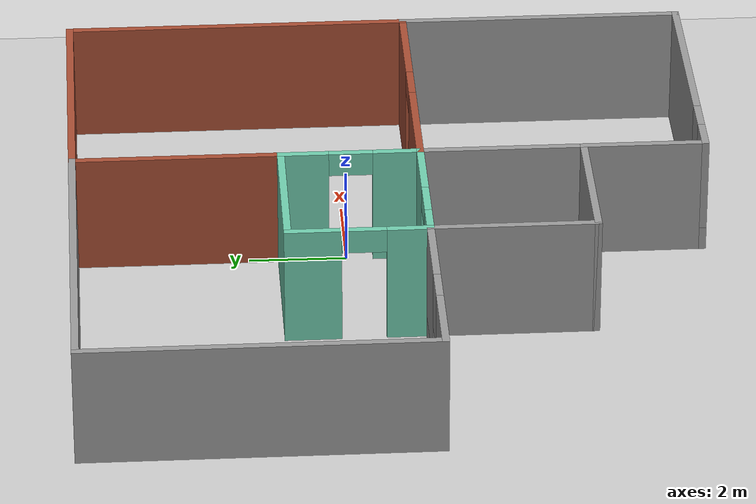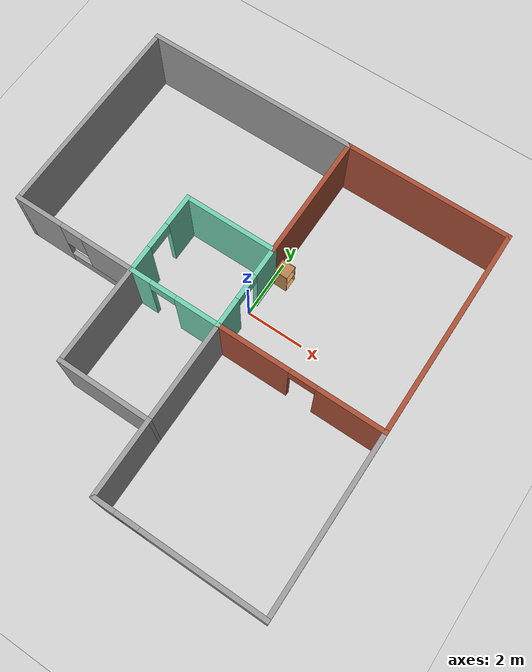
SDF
<sdf version="1.6">
 <world name="default">
  <plugin name="welcome" filename="libwelcome.so"/>
  <light name="sun" type="directional">
   <pose>0 0 10 0 -0 0</pose>
   <diffuse>0.8 0.8 0.8 1</diffuse>
   <specular>0.2 0.2 0.2 1</specular>
   <attenuation>
    <range>1000</range>
    <constant>0.9</constant>
    <linear>0.01</linear>
    <quadratic>0.001</quadratic>
   </attenuation>
   <direction>-0.5 0.1 -0.9</direction>
  </light>
  <model name="ground_plane">
   <static>1</static>
   <link name="link">
    <collision name="collision">
     <geometry><plane><normal>0 0 1</normal><size>100 100</size></plane></geometry>
     <surface><friction><ode><mu>100</mu><mu2>50</mu2></ode></friction></surface>
    </collision>
    <visual name="visual">
     <cast_shadows>0</cast_shadows>
     <geometry><plane><normal>0 0 1</normal><size>100 100</size></plane></geometry>
     <material>
      <script><uri>file://media/materials/scripts/gazebo.material</uri><name>Gazebo/Grey</name></script>
     </material>
    </visual>
   </link>
  </model>
  <gravity>0 0 -9.8</gravity>
  <magnetic_field>6e-06 2.3e-05 -4.2e-05</magnetic_field>
  <atmosphere type="adiabatic"/>
  <physics name="default_physics" default="0" type="ode">
   <max_step_size>0.001</max_step_size>
   <real_time_factor>1</real_time_factor>
   <real_time_update_rate>1000</real_time_update_rate>
  </physics>
  <scene><ambient>0.4 0.4 0.4 1</ambient><background>0.7 0.7 0.7 1</background><shadows>1</shadows></scene>
  <audio><device>default</device></audio>
  <spherical_coordinates>
   <surface_model>EARTH_WGS84</surface_model>
   <latitude_deg>0</latitude_deg>
   <longitude_deg>0</longitude_deg>
   <elevation>0</elevation>
   <heading_deg>0</heading_deg>
  </spherical_coordinates>
  <model name="model">
   <pose>-0.86393 -0.89424 0 0 -0 0</pose>
   <link name="Wall_10">
    <collision name="Wall_10_Collision">
     <geometry><box><size>5.75 0.15 2.5</size></box></geometry>
     <pose>0 0 1.25 0 -0 0</pose>
    </collision>
    <visual name="Wall_10_Visual">
     <pose>0 0 1.25 0 -0 0</pose>
     <geometry><box><size>5.75 0.15 2.5</size></box></geometry>
     <material>
      <script><uri>file://media/materials/scripts/gazebo.material</uri><name>Gazebo/Bricks</name></script>
      <ambient>1 1 1 1</ambient>
     </material>
     <meta><layer>0</layer></meta>
    </visual>
    <pose>3.67517 6.47508 0 0 -0 3.14159</pose>
   </link>
   <link name="Wall_11">
    <collision name="Wall_11_Collision">
     <geometry><box><size>4.4 0.15 2.5</size></box></geometry>
     <pose>0 0 1.25 0 -0 0</pose>
    </collision>
    <visual name="Wall_11_Visual">
     <pose>0 0 1.25 0 -0 0</pose>
     <geometry><box><size>4.4 0.15 2.5</size></box></geometry>
     <material>
      <script><uri>file://media/materials/scripts/gazebo.material</uri><name>Gazebo/Bricks</name></script>
      <ambient>1 1 1 1</ambient>
     </material>
     <meta><layer>0</layer></meta>
    </visual>
    <pose>0.875172 4.35008 0 0 -0 -1.5708</pose>
   </link>
   <link name="Wall_13">
    <collision name="Wall_13_Collision">
     <geometry><box><size>7.5 0.15 2.5</size></box></geometry>
     <pose>0 0 1.25 0 -0 0</pose>
    </collision>
    <visual name="Wall_13_Visual">
     <pose>0 0 1.25 0 -0 0</pose>
     <geometry><box><size>7.5 0.15 2.5</size></box></geometry>
     <material>
      <script><uri>file://media/materials/scripts/gazebo.material</uri><name>Gazebo/Grey</name></script>
      <ambient>1 1 1 1</ambient>
     </material>
     <meta><layer>0</layer></meta>
    </visual>
    <pose>-2.8 6.475 0 0 -0 -3.14157</pose>
   </link>
   <link name="Wall_14">
    <collision name="Wall_14_Collision">
     <geometry><box><size>7.25 0.15 2.5</size></box></geometry>
     <pose>0 0 1.25 0 -0 0</pose>
    </collision>
    <visual name="Wall_14_Visual">
     <pose>0 0 1.25 0 -0 0</pose>
     <geometry><box><size>7.25 0.15 2.5</size></box></geometry>
     <material>
      <script><uri>file://media/materials/scripts/gazebo.material</uri><name>Gazebo/Grey</name></script>
      <ambient>1 1 1 1</ambient>
     </material>
     <meta><layer>0</layer></meta>
    </visual>
    <pose>-6.47518 2.92492 0 0 -0 -1.5708</pose>
   </link>
   <link name="Wall_15">
    <pose>-4.35 -0.625001 0 0 -0 3.8e-05</pose>
    <visual name="Wall_15_Visual_0">
     <pose>-1.34375 0 1.25 0 -0 0</pose>
     <geometry><box><size>1.7125 0.15 2.5</size></box></geometry>
     <material>
      <script><uri>file://media/materials/scripts/gazebo.material</uri><name>Gazebo/Grey</name></script>
      <ambient>1 1 1 1</ambient>
     </material>
     <meta><layer>0</layer></meta>
    </visual>
    <collision name="Wall_15_Collision_0">
     <geometry><box><size>1.7125 0.15 2.5</size></box></geometry>
     <pose>-1.34375 0 1.25 0 -0 0</pose>
    </collision>
    <visual name="Wall_15_Visual_1">
     <pose>0.85625 0 0.25 0 -0 0</pose>
     <geometry><box><size>2.6875 0.15 0.5</size></box></geometry>
     <material>
      <script><uri>file://media/materials/scripts/gazebo.material</uri><name>Gazebo/Grey</name></script>
      <ambient>1 1 1 1</ambient>
     </material>
     <meta><layer>0</layer></meta>
    </visual>
    <collision name="Wall_15_Collision_1">
     <geometry><box><size>2.6875 0.15 0.5</size></box></geometry>
     <pose>0.85625 0 0.25 0 -0 0</pose>
    </collision>
    <visual name="Wall_15_Visual_2">
     <pose>1.25625 0 1.5 0 -0 0</pose>
     <geometry><box><size>1.8875 0.15 2</size></box></geometry>
     <material>
      <script><uri>file://media/materials/scripts/gazebo.material</uri><name>Gazebo/Grey</name></script>
      <ambient>1 1 1 1</ambient>
     </material>
     <meta><layer>0</layer></meta>
    </visual>
    <collision name="Wall_15_Collision_2">
     <geometry><box><size>1.8875 0.15 2</size></box></geometry>
     <pose>1.25625 0 1.5 0 -0 0</pose>
    </collision>
    <visual name="Wall_15_Visual_3">
     <pose>-0.0875 0 1.9 0 -0 0</pose>
     <geometry><box><size>0.8 0.15 1.2</size></box></geometry>
     <material>
      <script><uri>file://media/materials/scripts/gazebo.material</uri><name>Gazebo/Grey</name></script>
      <ambient>1 1 1 1</ambient>
     </material>
     <meta><layer>0</layer></meta>
    </visual>
    <collision name="Wall_15_Collision_3">
     <geometry><box><size>0.8 0.15 1.2</size></box></geometry>
     <pose>-0.0875 0 1.9 0 -0 0</pose>
    </collision>
   </link>
   <link name="Wall_16">
    <collision name="Wall_16_Collision">
     <geometry><box><size>3.5 0.15 2.5</size></box></geometry>
     <pose>0 0 1.25 0 -0 0</pose>
    </collision>
    <visual name="Wall_16_Visual">
     <pose>0 0 1.25 0 -0 0</pose>
     <geometry><box><size>3.5 0.15 2.5</size></box></geometry>
     <material>
      <script><uri>file://media/materials/scripts/gazebo.material</uri><name>Gazebo/Grey</name></script>
      <ambient>1 1 1 1</ambient>
     </material>
     <meta><layer>0</layer></meta>
    </visual>
    <pose>-2.225 -2.3 0 0 -0 -1.5709</pose>
   </link>
   <link name="Wall_17">
    <collision name="Wall_17_Collision">
     <geometry><box><size>3.25 0.15 2.5</size></box></geometry>
     <pose>0 0 1.25 0 -0 0</pose>
    </collision>
    <visual name="Wall_17_Visual">
     <pose>0 0 1.25 0 -0 0</pose>
     <geometry><box><size>3.25 0.15 2.5</size></box></geometry>
     <material>
      <script><uri>file://media/materials/scripts/gazebo.material</uri><name>Gazebo/Grey</name></script>
      <ambient>1 1 1 1</ambient>
     </material>
     <meta><layer>0</layer></meta>
    </visual>
    <pose>-0.675176 -3.97508 0 0 -0 0</pose>
   </link>
   <link name="Wall_18">
    <collision name="Wall_18_Collision">
     <geometry><box><size>3.5 0.15 2.5</size></box></geometry>
     <pose>0 0 1.25 0 -0 0</pose>
    </collision>
    <visual name="Wall_18_Visual">
     <pose>0 0 1.25 0 -0 0</pose>
     <geometry><box><size>3.5 0.15 2.5</size></box></geometry>
     <material>
      <script><uri>file://media/materials/scripts/gazebo.material</uri><name>Gazebo/Grey</name></script>
      <ambient>1 1 1 1</ambient>
     </material>
     <meta><layer>0</layer></meta>
    </visual>
    <pose>0.874998 -2.3 0 0 -0 1.57069</pose>
   </link>
   <link name="Wall_20">
    <collision name="Wall_20_Collision">
     <geometry><box><size>6 0.15 2.5</size></box></geometry>
     <pose>0 0 1.25 0 -0 0</pose>
    </collision>
    <visual name="Wall_20_Visual">
     <pose>0 0 1.25 0 -0 0</pose>
     <geometry><box><size>6 0.15 2.5</size></box></geometry>
     <material>
      <script><uri>file://media/materials/scripts/gazebo.material</uri><name>Gazebo/Grey</name></script>
      <ambient>1 1 1 1</ambient>
     </material>
     <meta><layer>0</layer></meta>
    </visual>
    <pose>6.475 -3.55 0 0 -0 -1.57086</pose>
   </link>
   <link name="Wall_21">
    <pose>3.67482 -6.47508 0 0 -0 3.14159</pose>
    <visual name="Wall_21_Visual_0">
     <pose>-0.799425 0 1.25 0 -0 0</pose>
     <geometry><box><size>4.15115 0.15 2.5</size></box></geometry>
     <material>
      <script><uri>file://media/materials/scripts/gazebo.material</uri><name>Gazebo/Grey</name></script>
      <ambient>1 1 1 1</ambient>
     </material>
     <meta><layer>0</layer></meta>
    </visual>
    <collision name="Wall_21_Collision_0">
     <geometry><box><size>4.15115 0.15 2.5</size></box></geometry>
     <pose>-0.799425 0 1.25 0 -0 0</pose>
    </collision>
    <visual name="Wall_21_Visual_1">
     <pose>2.07558 0 0.25 0 -0 0</pose>
     <geometry><box><size>1.59885 0.15 0.5</size></box></geometry>
     <material>
      <script><uri>file://media/materials/scripts/gazebo.material</uri><name>Gazebo/Grey</name></script>
      <ambient>1 1 1 1</ambient>
     </material>
     <meta><layer>0</layer></meta>
    </visual>
    <collision name="Wall_21_Collision_1">
     <geometry><box><size>1.59885 0.15 0.5</size></box></geometry>
     <pose>2.07558 0 0.25 0 -0 0</pose>
    </collision>
    <visual name="Wall_21_Visual_2">
     <pose>2.47558 0 1.5 0 -0 0</pose>
     <geometry><box><size>0.79885 0.15 2</size></box></geometry>
     <material>
      <script><uri>file://media/materials/scripts/gazebo.material</uri><name>Gazebo/Grey</name></script>
      <ambient>1 1 1 1</ambient>
     </material>
     <meta><layer>0</layer></meta>
    </visual>
    <collision name="Wall_21_Collision_2">
     <geometry><box><size>0.79885 0.15 2</size></box></geometry>
     <pose>2.47558 0 1.5 0 -0 0</pose>
    </collision>
    <visual name="Wall_21_Visual_3">
     <pose>1.67615 0 1.9 0 -0 0</pose>
     <geometry><box><size>0.8 0.15 1.2</size></box></geometry>
     <material>
      <script><uri>file://media/materials/scripts/gazebo.material</uri><name>Gazebo/Grey</name></script>
      <ambient>1 1 1 1</ambient>
     </material>
     <meta><layer>0</layer></meta>
    </visual>
    <collision name="Wall_21_Collision_3">
     <geometry><box><size>0.8 0.15 1.2</size></box></geometry>
     <pose>1.67615 0 1.9 0 -0 0</pose>
    </collision>
   </link>
   <link name="Wall_22">
    <collision name="Wall_22_Collision">
     <geometry><box><size>2.65 0.15 2.5</size></box></geometry>
     <pose>0 0 1.25 0 -0 0</pose>
    </collision>
    <visual name="Wall_22_Visual">
     <pose>0 0 1.25 0 -0 0</pose>
     <geometry><box><size>2.65 0.15 2.5</size></box></geometry>
     <material>
      <script><uri>file://media/materials/scripts/gazebo.material</uri><name>Gazebo/Grey</name></script>
      <ambient>1 1 1 1</ambient>
     </material>
     <meta><layer>0</layer></meta>
    </visual>
    <pose>0.874824 -5.22508 0 0 -0 1.5708</pose>
   </link>
   <link name="Wall_3">
    <collision name="Wall_3_Collision">
     <geometry><box><size>3.25 0.15 2.5</size></box></geometry>
     <pose>0 0 1.25 0 -0 0</pose>
    </collision>
    <visual name="Wall_3_Visual">
     <pose>0 0 1.25 0 -0 0</pose>
     <geometry><box><size>3.25 0.15 2.5</size></box></geometry>
     <material>
      <script><uri>file://media/materials/scripts/gazebo.material</uri><name>Gazebo/Grey</name></script>
      <ambient>0.435294 0.796078 0.67451 1</ambient>
     </material>
     <meta><layer>0</layer></meta>
    </visual>
    <pose>-0.674828 2.22508 0 0 -0 0</pose>
   </link>
   <link name="Wall_4">
    <pose>0.875172 0.80008 0 0 -0 -1.5708</pose>
    <visual name="Wall_4_Visual_0">
     <pose>-0.973468 0 1.25 0 -0 0</pose>
     <geometry><box><size>1.05306 0.15 2.5</size></box></geometry>
     <material>
      <script><uri>file://media/materials/scripts/gazebo.material</uri><name>Gazebo/Grey</name></script>
      <ambient>0.435294 0.796078 0.67451 1</ambient>
     </material>
     <meta><layer>0</layer></meta>
    </visual>
    <collision name="Wall_4_Collision_0">
     <geometry><box><size>1.05306 0.15 2.5</size></box></geometry>
     <pose>-0.973468 0 1.25 0 -0 0</pose>
    </collision>
    <visual name="Wall_4_Visual_1">
     <pose>0.976532 0 1.25 0 -0 0</pose>
     <geometry><box><size>1.04694 0.15 2.5</size></box></geometry>
     <material>
      <script><uri>file://media/materials/scripts/gazebo.material</uri><name>Gazebo/Grey</name></script>
      <ambient>0.435294 0.796078 0.67451 1</ambient>
     </material>
     <meta><layer>0</layer></meta>
    </visual>
    <collision name="Wall_4_Collision_1">
     <geometry><box><size>1.04694 0.15 2.5</size></box></geometry>
     <pose>0.976532 0 1.25 0 -0 0</pose>
    </collision>
    <visual name="Wall_4_Visual_2">
     <pose>0.003064 0 2.25 0 -0 0</pose>
     <geometry><box><size>0.9 0.15 0.5</size></box></geometry>
     <material>
      <script><uri>file://media/materials/scripts/gazebo.material</uri><name>Gazebo/Grey</name></script>
      <ambient>0.435294 0.796078 0.67451 1</ambient>
     </material>
     <meta><layer>0</layer></meta>
    </visual>
    <collision name="Wall_4_Collision_2">
     <geometry><box><size>0.9 0.15 0.5</size></box></geometry>
     <pose>0.003064 0 2.25 0 -0 0</pose>
    </collision>
   </link>
   <link name="Wall_5">
    <pose>-0.674828 -0.62492 0 0 -0 3.14159</pose>
    <visual name="Wall_5_Visual_0">
     <pose>-0.835737 0 1.25 0 -0 0</pose>
     <geometry><box><size>1.57853 0.15 2.5</size></box></geometry>
     <material>
      <script><uri>file://media/materials/scripts/gazebo.material</uri><name>Gazebo/Grey</name></script>
      <ambient>0.435294 0.796078 0.67451 1</ambient>
     </material>
     <meta><layer>0</layer></meta>
    </visual>
    <collision name="Wall_5_Collision_0">
     <geometry><box><size>1.57853 0.15 2.5</size></box></geometry>
     <pose>-0.835737 0 1.25 0 -0 0</pose>
    </collision>
    <visual name="Wall_5_Visual_1">
     <pose>1.23926 0 1.25 0 -0 0</pose>
     <geometry><box><size>0.771474 0.15 2.5</size></box></geometry>
     <material>
      <script><uri>file://media/materials/scripts/gazebo.material</uri><name>Gazebo/Grey</name></script>
      <ambient>0.435294 0.796078 0.67451 1</ambient>
     </material>
     <meta><layer>0</layer></meta>
    </visual>
    <collision name="Wall_5_Collision_1">
     <geometry><box><size>0.771474 0.15 2.5</size></box></geometry>
     <pose>1.23926 0 1.25 0 -0 0</pose>
    </collision>
    <visual name="Wall_5_Visual_2">
     <pose>0.403526 0 2.25 0 -0 0</pose>
     <geometry><box><size>0.9 0.15 0.5</size></box></geometry>
     <material>
      <script><uri>file://media/materials/scripts/gazebo.material</uri><name>Gazebo/Grey</name></script>
      <ambient>0.435294 0.796078 0.67451 1</ambient>
     </material>
     <meta><layer>0</layer></meta>
    </visual>
    <collision name="Wall_5_Collision_2">
     <geometry><box><size>0.9 0.15 0.5</size></box></geometry>
     <pose>0.403526 0 2.25 0 -0 0</pose>
    </collision>
   </link>
   <link name="Wall_6">
    <pose>-2.22483 0.80008 0 0 -0 1.5708</pose>
    <visual name="Wall_6_Visual_0">
     <pose>-1.02682 0 1.25 0 -0 0</pose>
     <geometry><box><size>0.946369 0.15 2.5</size></box></geometry>
     <material>
      <script><uri>file://media/materials/scripts/gazebo.material</uri><name>Gazebo/Grey</name></script>
      <ambient>0.435294 0.796078 0.67451 1</ambient>
     </material>
     <meta><layer>0</layer></meta>
    </visual>
    <collision name="Wall_6_Collision_0">
     <geometry><box><size>0.946369 0.15 2.5</size></box></geometry>
     <pose>-1.02682 0 1.25 0 -0 0</pose>
    </collision>
    <visual name="Wall_6_Visual_1">
     <pose>0.923184 0 1.25 0 -0 0</pose>
     <geometry><box><size>1.15363 0.15 2.5</size></box></geometry>
     <material>
      <script><uri>file://media/materials/scripts/gazebo.material</uri><name>Gazebo/Grey</name></script>
      <ambient>0.435294 0.796078 0.67451 1</ambient>
     </material>
     <meta><layer>0</layer></meta>
    </visual>
    <collision name="Wall_6_Collision_1">
     <geometry><box><size>1.15363 0.15 2.5</size></box></geometry>
     <pose>0.923184 0 1.25 0 -0 0</pose>
    </collision>
    <visual name="Wall_6_Visual_2">
     <pose>-0.103631 0 2.25 0 -0 0</pose>
     <geometry><box><size>0.9 0.15 0.5</size></box></geometry>
     <material>
      <script><uri>file://media/materials/scripts/gazebo.material</uri><name>Gazebo/Grey</name></script>
      <ambient>0.435294 0.796078 0.67451 1</ambient>
     </material>
     <meta><layer>0</layer></meta>
    </visual>
    <collision name="Wall_6_Collision_2">
     <geometry><box><size>0.9 0.15 0.5</size></box></geometry>
     <pose>-0.103631 0 2.25 0 -0 0</pose>
    </collision>
   </link>
   <link name="Wall_8">
    <pose>3.67517 -0.62492 0 0 -0 0</pose>
    <visual name="Wall_8_Visual_0">
     <pose>-1.61558 0 1.25 0 -0 0</pose>
     <geometry><box><size>2.51884 0.15 2.5</size></box></geometry>
     <material>
      <script><uri>file://media/materials/scripts/gazebo.material</uri><name>Gazebo/Bricks</name></script>
      <ambient>1 1 1 1</ambient>
     </material>
     <meta><layer>0</layer></meta>
    </visual>
    <collision name="Wall_8_Collision_0">
     <geometry><box><size>2.51884 0.15 2.5</size></box></geometry>
     <pose>-1.61558 0 1.25 0 -0 0</pose>
    </collision>
    <visual name="Wall_8_Visual_1">
     <pose>1.70942 0 1.25 0 -0 0</pose>
     <geometry><box><size>2.33116 0.15 2.5</size></box></geometry>
     <material>
      <script><uri>file://media/materials/scripts/gazebo.material</uri><name>Gazebo/Bricks</name></script>
      <ambient>1 1 1 1</ambient>
     </material>
     <meta><layer>0</layer></meta>
    </visual>
    <collision name="Wall_8_Collision_1">
     <geometry><box><size>2.33116 0.15 2.5</size></box></geometry>
     <pose>1.70942 0 1.25 0 -0 0</pose>
    </collision>
    <visual name="Wall_8_Visual_2">
     <pose>0.093844 0 2.25 0 -0 0</pose>
     <geometry><box><size>0.9 0.15 0.5</size></box></geometry>
     <material>
      <script><uri>file://media/materials/scripts/gazebo.material</uri><name>Gazebo/Bricks</name></script>
      <ambient>1 1 1 1</ambient>
     </material>
     <meta><layer>0</layer></meta>
    </visual>
    <collision name="Wall_8_Collision_2">
     <geometry><box><size>0.9 0.15 0.5</size></box></geometry>
     <pose>0.093844 0 2.25 0 -0 0</pose>
    </collision>
   </link>
   <link name="Wall_9">
    <collision name="Wall_9_Collision">
     <geometry><box><size>7.25 0.15 2.5</size></box></geometry>
     <pose>0 0 1.25 0 -0 0</pose>
    </collision>
    <visual name="Wall_9_Visual">
     <pose>0 0 1.25 0 -0 0</pose>
     <geometry><box><size>7.25 0.15 2.5</size></box></geometry>
     <material>
      <script><uri>file://media/materials/scripts/gazebo.material</uri><name>Gazebo/Bricks</name></script>
      <ambient>1 1 1 1</ambient>
     </material>
     <meta><layer>0</layer></meta>
    </visual>
    <pose>6.47517 2.92508 0 0 -0 1.5708</pose>
   </link>
   <static>1</static>
  </model>
  <model name="cabinet">
   <static>1</static>
   <link name="cabinet_bottom_plate">
    <inertial>
     <pose>0 0 -1 0 -0 0</pose>
     <inertia><ixx>2.05</ixx><ixy>0</ixy><ixz>0</ixz><iyy>2.05</iyy><iyz>0</iyz><izz>2.05</izz></inertia>
     <mass>25</mass>
    </inertial>
    <collision name="cabinet_bottom_plate_geom">
     <pose>0 0 0.01 0 -0 0</pose>
     <geometry><box><size>0.45 0.45 0.02</size></box></geometry>
    </collision>
    <visual name="cabinet_bottom_plate_geom_visual">
     <pose>0 0 0.01 0 -0 0</pose>
     <geometry><box><size>0.45 0.45 0.02</size></box></geometry>
     <material>
      <script><uri>file://media/materials/scripts/gazebo.material</uri><name>Gazebo/Wood</name></script>
     </material>
    </visual>
    <collision name="cabinet_bottom_plate_geom_cabinet_back_plate">
     <pose>0.235 0 0.51 0 -0 0</pose>
     <geometry><box><size>0.02 0.45 1.02</size></box></geometry>
    </collision>
    <visual name="cabinet_bottom_plate_geom_cabinet_back_plate_visual">
     <pose>0.235 0 0.51 0 -0 0</pose>
     <geometry><box><size>0.02 0.45 1.02</size></box></geometry>
     <material>
      <script><uri>file://media/materials/scripts/gazebo.material</uri><name>Gazebo/Wood</name></script>
     </material>
    </visual>
    <collision name="cabinet_bottom_plate_geom_cabinet_left_plate">
     <pose>0 0.235 0.51 0 -0 0</pose>
     <geometry><box><size>0.45 0.02 1.02</size></box></geometry>
    </collision>
    <visual name="cabinet_bottom_plate_geom_cabinet_left_plate_visual">
     <pose>0 0.235 0.51 0 -0 0</pose>
     <geometry><box><size>0.45 0.02 1.02</size></box></geometry>
     <material>
      <script><uri>file://media/materials/scripts/gazebo.material</uri><name>Gazebo/Wood</name></script>
     </material>
    </visual>
    <collision name="cabinet_bottom_plate_geom_cabinet_middle_plate">
     <pose>0 0 0.51 0 -0 0</pose>
     <geometry><box><size>0.45 0.45 0.02</size></box></geometry>
    </collision>
    <visual name="cabinet_bottom_plate_geom_cabinet_middle_plate_visual">
     <pose>0 0 0.51 0 -0 0</pose>
     <geometry><box><size>0.45 0.45 0.02</size></box></geometry>
     <material>
      <script><uri>file://media/materials/scripts/gazebo.material</uri><name>Gazebo/Wood</name></script>
     </material>
    </visual>
    <collision name="cabinet_bottom_plate_geom_cabinet_right_plate">
     <pose>0 -0.235 0.51 0 -0 0</pose>
     <geometry><box><size>0.45 0.02 1.02</size></box></geometry>
    </collision>
    <visual name="cabinet_bottom_plate_geom_cabinet_right_plate_visual">
     <pose>0 -0.235 0.51 0 -0 0</pose>
     <geometry><box><size>0.45 0.02 1.02</size></box></geometry>
     <material>
      <script><uri>file://media/materials/scripts/gazebo.material</uri><name>Gazebo/Wood</name></script>
     </material>
    </visual>
    <collision name="cabinet_bottom_plate_geom_cabinet_top_plate">
     <pose>0 0 1.01 0 -0 0</pose>
     <geometry><box><size>0.45 0.45 0.02</size></box></geometry>
    </collision>
    <visual name="cabinet_bottom_plate_geom_cabinet_top_plate_visual">
     <pose>0 0 1.01 0 -0 0</pose>
     <geometry><box><size>0.45 0.45 0.02</size></box></geometry>
     <material>
      <script><uri>file://media/materials/scripts/gazebo.material</uri><name>Gazebo/Wood</name></script>
     </material>
    </visual>
   </link>
   <pose>0.341591 1.53724 0 0 -0 3.13516</pose>
  </model>
 </world>
</sdf>
